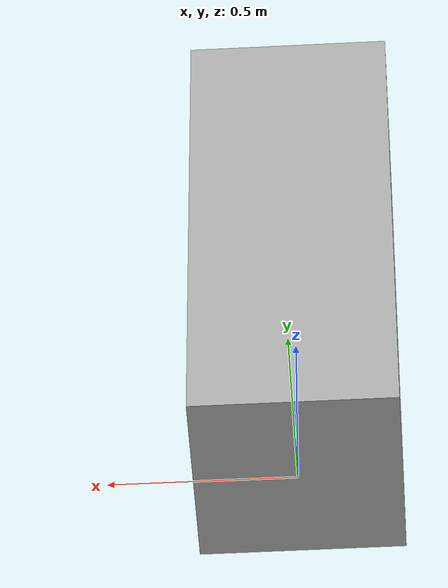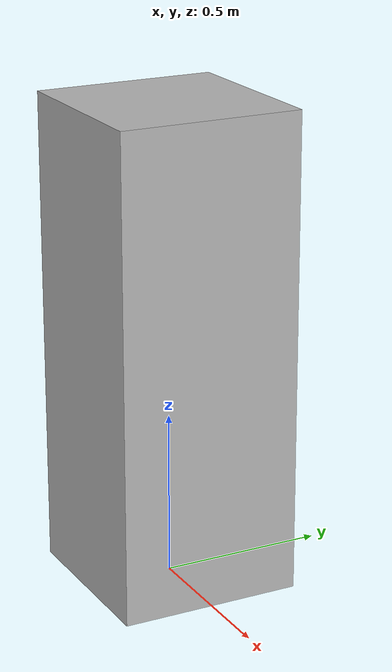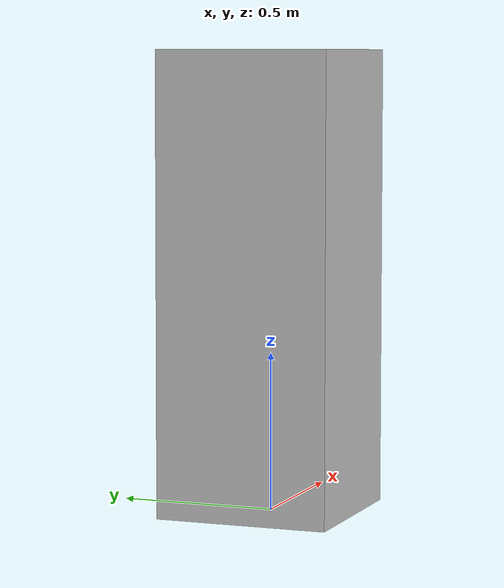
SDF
<?xml version="1.0"?>
<sdf version="1.6">
  <model name="impuls/fridge" type="refrigerator">
    <link name="1_link">
      <collision name="1_col">
        <geometry>
          <box>
            <size>0.55 0.55 1.45</size>
          </box>
        </geometry>
      </collision>
      <visual name="1_vis">
        <geometry>
          <box>
            <size>0.55 0.55 1.45</size>
          </box>
        </geometry>
      </visual>
      <pose>0.0 0.0 0.725 0 0 0</pose>
    </link>
    <static>true</static>
  </model>
</sdf>
